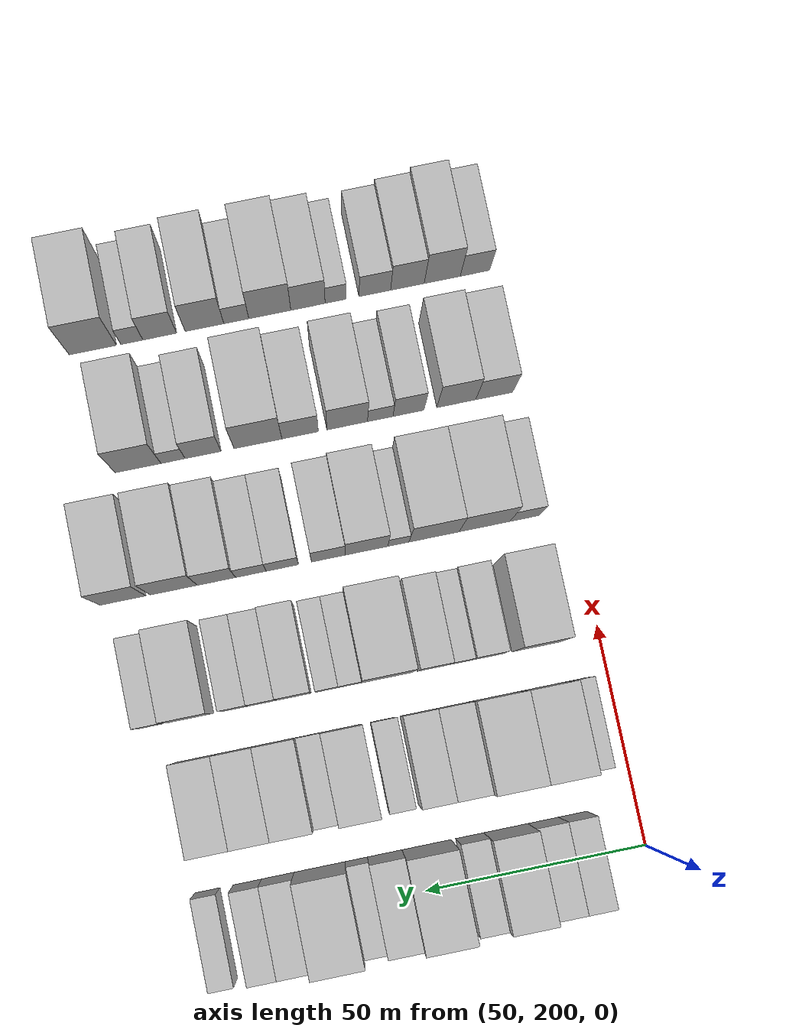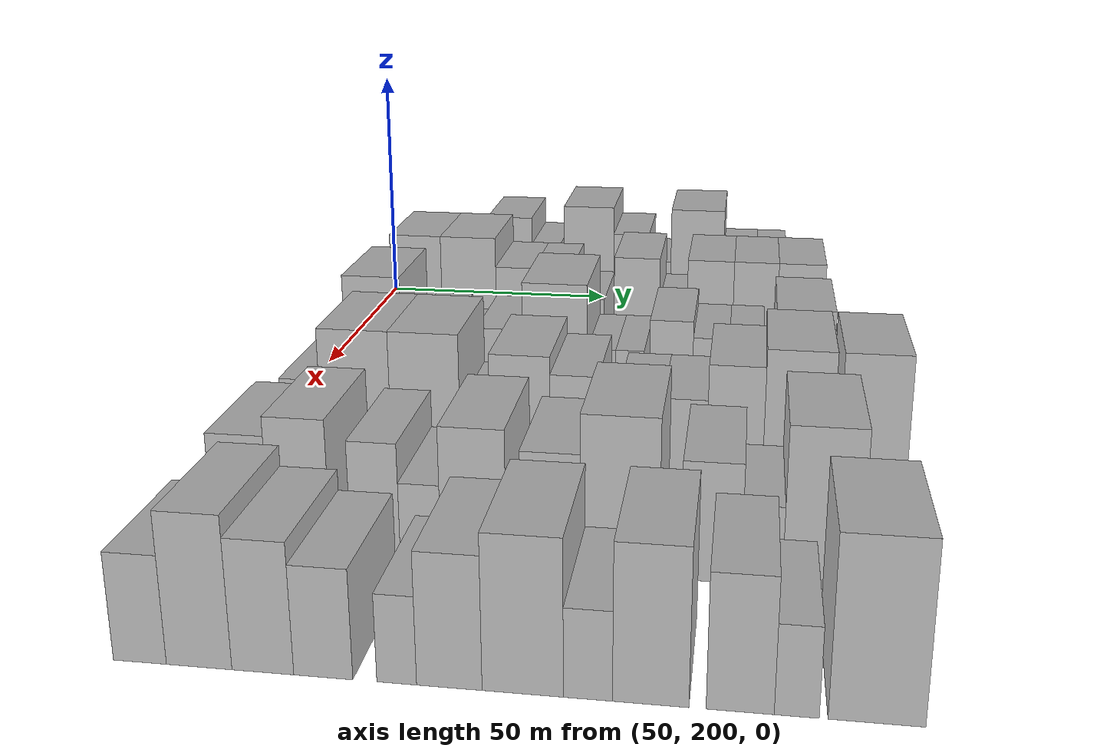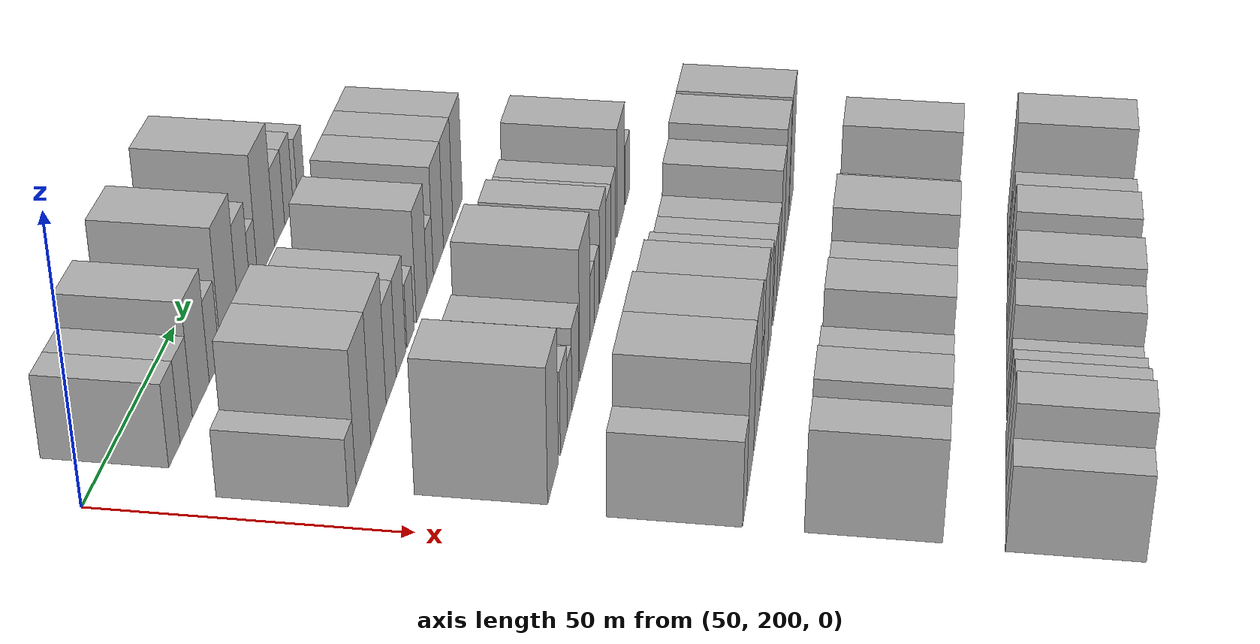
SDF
<sdf version="1.6">
 <world name="default">
  <model name="building_76">
   <static>1</static>
   <pose>50.0000 214.5191 0 0.000000 0.000000 0.000000</pose>
   <link name="link">
    <pose>0 0 7.50 0 0 0</pose>
    <collision name="collision"><geometry><box><size>20.0000 6.4022 15.0000</size></box></geometry></collision>
    <visual name="visual">
     <cast_shadows>0</cast_shadows>
     <geometry><box><size>20.0000 6.4022 15.0000</size></box></geometry>
     <material>
      <script>
       <uri>model://HANNAS_wall/materials/scripts</uri>
       <uri>model://HANNAS_wall/materials/textures</uri>
       <name>vrc/HANNAS_wall</name>
      </script>
     </material>
    </visual>
   </link>
  </model>
  <model name="building_77">
   <static>1</static>
   <pose>50.0000 221.2365 0 0.000000 0.000000 0.000000</pose>
   <link name="link">
    <pose>0 0 7.50 0 0 0</pose>
    <collision name="collision"><geometry><box><size>20.0000 7.0326 15.0000</size></box></geometry></collision>
    <visual name="visual">
     <cast_shadows>0</cast_shadows>
     <geometry><box><size>20.0000 7.0326 15.0000</size></box></geometry>
     <material>
      <script>
       <uri>model://HANNAS_wall/materials/scripts</uri>
       <uri>model://HANNAS_wall/materials/textures</uri>
       <name>vrc/HANNAS_wall</name>
      </script>
     </material>
    </visual>
   </link>
  </model>
  <model name="building_78">
   <static>1</static>
   <pose>50.0000 229.7647 0 0.000000 0.000000 0.000000</pose>
   <link name="link">
    <pose>0 0 10.50 0 0 0</pose>
    <collision name="collision"><geometry><box><size>20.0000 10.0237 21.0000</size></box></geometry></collision>
    <visual name="visual">
     <cast_shadows>0</cast_shadows>
     <geometry><box><size>20.0000 10.0237 21.0000</size></box></geometry>
     <material>
      <script>
       <uri>model://HANNAS_wall/materials/scripts</uri>
       <uri>model://HANNAS_wall/materials/textures</uri>
       <name>vrc/HANNAS_wall</name>
      </script>
     </material>
    </visual>
   </link>
  </model>
  <model name="building_79">
   <static>1</static>
   <pose>50.0000 237.9701 0 0.000000 0.000000 0.000000</pose>
   <link name="link">
    <pose>0 0 7.50 0 0 0</pose>
    <collision name="collision"><geometry><box><size>20.0000 6.3873 15.0000</size></box></geometry></collision>
    <visual name="visual">
     <cast_shadows>0</cast_shadows>
     <geometry><box><size>20.0000 6.3873 15.0000</size></box></geometry>
     <material>
      <script>
       <uri>model://HANNAS_wall/materials/scripts</uri>
       <uri>model://HANNAS_wall/materials/textures</uri>
       <name>vrc/HANNAS_wall</name>
      </script>
     </material>
    </visual>
   </link>
  </model>
  <model name="building_80">
   <static>1</static>
   <pose>50.0000 247.7538 0 0.000000 0.000000 0.000000</pose>
   <link name="link">
    <pose>0 0 12.00 0 0 0</pose>
    <collision name="collision"><geometry><box><size>20.0000 11.1800 24.0000</size></box></geometry></collision>
    <visual name="visual">
     <cast_shadows>0</cast_shadows>
     <geometry><box><size>20.0000 11.1800 24.0000</size></box></geometry>
     <material>
      <script>
       <uri>model://HANNAS_wall/materials/scripts</uri>
       <uri>model://HANNAS_wall/materials/textures</uri>
       <name>vrc/HANNAS_wall</name>
      </script>
     </material>
    </visual>
   </link>
  </model>
  <model name="building_81">
   <static>1</static>
   <pose>50.0000 257.2533 0 0.000000 0.000000 0.000000</pose>
   <link name="link">
    <pose>0 0 9.00 0 0 0</pose>
    <collision name="collision"><geometry><box><size>20.0000 7.8191 18.0000</size></box></geometry></collision>
    <visual name="visual">
     <cast_shadows>0</cast_shadows>
     <geometry><box><size>20.0000 7.8191 18.0000</size></box></geometry>
     <material>
      <script>
       <uri>model://HANNAS_wall/materials/scripts</uri>
       <uri>model://HANNAS_wall/materials/textures</uri>
       <name>vrc/HANNAS_wall</name>
      </script>
     </material>
    </visual>
   </link>
  </model>
  <model name="building_82">
   <static>1</static>
   <pose>50.0000 263.6505 0 0.000000 0.000000 0.000000</pose>
   <link name="link">
    <pose>0 0 6.00 0 0 0</pose>
    <collision name="collision"><geometry><box><size>20.0000 4.9752 12.0000</size></box></geometry></collision>
    <visual name="visual">
     <cast_shadows>0</cast_shadows>
     <geometry><box><size>20.0000 4.9752 12.0000</size></box></geometry>
     <material>
      <script>
       <uri>model://HANNAS_wall/materials/scripts</uri>
       <uri>model://HANNAS_wall/materials/textures</uri>
       <name>vrc/HANNAS_wall</name>
      </script>
     </material>
    </visual>
   </link>
  </model>
  <model name="building_83">
   <static>1</static>
   <pose>50.0000 271.9562 0 0.000000 0.000000 0.000000</pose>
   <link name="link">
    <pose>0 0 12.00 0 0 0</pose>
    <collision name="collision"><geometry><box><size>20.0000 11.6362 24.0000</size></box></geometry></collision>
    <visual name="visual">
     <cast_shadows>0</cast_shadows>
     <geometry><box><size>20.0000 11.6362 24.0000</size></box></geometry>
     <material>
      <script>
       <uri>model://HANNAS_wall/materials/scripts</uri>
       <uri>model://HANNAS_wall/materials/textures</uri>
       <name>vrc/HANNAS_wall</name>
      </script>
     </material>
    </visual>
   </link>
  </model>
  <model name="building_84">
   <static>1</static>
   <pose>50.0000 281.4406 0 0.000000 0.000000 0.000000</pose>
   <link name="link">
    <pose>0 0 7.50 0 0 0</pose>
    <collision name="collision"><geometry><box><size>20.0000 7.3326 15.0000</size></box></geometry></collision>
    <visual name="visual">
     <cast_shadows>0</cast_shadows>
     <geometry><box><size>20.0000 7.3326 15.0000</size></box></geometry>
     <material>
      <script>
       <uri>model://HANNAS_wall/materials/scripts</uri>
       <uri>model://HANNAS_wall/materials/textures</uri>
       <name>vrc/HANNAS_wall</name>
      </script>
     </material>
    </visual>
   </link>
  </model>
  <model name="building_85">
   <static>1</static>
   <pose>50.0000 288.3060 0 0.000000 0.000000 0.000000</pose>
   <link name="link">
    <pose>0 0 7.50 0 0 0</pose>
    <collision name="collision"><geometry><box><size>20.0000 6.3982 15.0000</size></box></geometry></collision>
    <visual name="visual">
     <cast_shadows>0</cast_shadows>
     <geometry><box><size>20.0000 6.3982 15.0000</size></box></geometry>
     <material>
      <script>
       <uri>model://HANNAS_wall/materials/scripts</uri>
       <uri>model://HANNAS_wall/materials/textures</uri>
       <name>vrc/HANNAS_wall</name>
      </script>
     </material>
    </visual>
   </link>
  </model>
  <model name="building_86">
   <static>1</static>
   <pose>50.0000 297.3018 0 0.000000 0.000000 0.000000</pose>
   <link name="link">
    <pose>0 0 6.00 0 0 0</pose>
    <collision name="collision"><geometry><box><size>20.0000 5.5934 12.0000</size></box></geometry></collision>
    <visual name="visual">
     <cast_shadows>0</cast_shadows>
     <geometry><box><size>20.0000 5.5934 12.0000</size></box></geometry>
     <material>
      <script>
       <uri>model://HANNAS_wall/materials/scripts</uri>
       <uri>model://HANNAS_wall/materials/textures</uri>
       <name>vrc/HANNAS_wall</name>
      </script>
     </material>
    </visual>
   </link>
  </model>
  <model name="building_187">
   <static>1</static>
   <pose>79.0000 207.6143 0 0.000000 0.000000 0.000000</pose>
   <link name="link">
    <pose>0 0 6.00 0 0 0</pose>
    <collision name="collision"><geometry><box><size>20.0000 5.2661 12.0000</size></box></geometry></collision>
    <visual name="visual">
     <cast_shadows>0</cast_shadows>
     <geometry><box><size>20.0000 5.2661 12.0000</size></box></geometry>
     <material>
      <script>
       <uri>model://HANNAS_wall/materials/scripts</uri>
       <uri>model://HANNAS_wall/materials/textures</uri>
       <name>vrc/HANNAS_wall</name>
      </script>
     </material>
    </visual>
   </link>
  </model>
  <model name="building_188">
   <static>1</static>
   <pose>79.0000 215.5595 0 0.000000 0.000000 0.000000</pose>
   <link name="link">
    <pose>0 0 12.00 0 0 0</pose>
    <collision name="collision"><geometry><box><size>20.0000 10.6242 24.0000</size></box></geometry></collision>
    <visual name="visual">
     <cast_shadows>0</cast_shadows>
     <geometry><box><size>20.0000 10.6242 24.0000</size></box></geometry>
     <material>
      <script>
       <uri>model://HANNAS_wall/materials/scripts</uri>
       <uri>model://HANNAS_wall/materials/textures</uri>
       <name>vrc/HANNAS_wall</name>
      </script>
     </material>
    </visual>
   </link>
  </model>
  <model name="building_189">
   <static>1</static>
   <pose>79.0000 226.5556 0 0.000000 0.000000 0.000000</pose>
   <link name="link">
    <pose>0 0 12.00 0 0 0</pose>
    <collision name="collision"><geometry><box><size>20.0000 11.3680 24.0000</size></box></geometry></collision>
    <visual name="visual">
     <cast_shadows>0</cast_shadows>
     <geometry><box><size>20.0000 11.3680 24.0000</size></box></geometry>
     <material>
      <script>
       <uri>model://HANNAS_wall/materials/scripts</uri>
       <uri>model://HANNAS_wall/materials/textures</uri>
       <name>vrc/HANNAS_wall</name>
      </script>
     </material>
    </visual>
   </link>
  </model>
  <model name="building_190">
   <static>1</static>
   <pose>79.0000 236.1468 0 0.000000 0.000000 0.000000</pose>
   <link name="link">
    <pose>0 0 9.00 0 0 0</pose>
    <collision name="collision"><geometry><box><size>20.0000 7.8143 18.0000</size></box></geometry></collision>
    <visual name="visual">
     <cast_shadows>0</cast_shadows>
     <geometry><box><size>20.0000 7.8143 18.0000</size></box></geometry>
     <material>
      <script>
       <uri>model://HANNAS_wall/materials/scripts</uri>
       <uri>model://HANNAS_wall/materials/textures</uri>
       <name>vrc/HANNAS_wall</name>
      </script>
     </material>
    </visual>
   </link>
  </model>
  <model name="building_191">
   <static>1</static>
   <pose>79.0000 243.8932 0 0.000000 0.000000 0.000000</pose>
   <link name="link">
    <pose>0 0 9.00 0 0 0</pose>
    <collision name="collision"><geometry><box><size>20.0000 7.6785 18.0000</size></box></geometry></collision>
    <visual name="visual">
     <cast_shadows>0</cast_shadows>
     <geometry><box><size>20.0000 7.6785 18.0000</size></box></geometry>
     <material>
      <script>
       <uri>model://HANNAS_wall/materials/scripts</uri>
       <uri>model://HANNAS_wall/materials/textures</uri>
       <name>vrc/HANNAS_wall</name>
      </script>
     </material>
    </visual>
   </link>
  </model>
  <model name="building_192">
   <static>1</static>
   <pose>79.0000 251.6513 0 0.000000 0.000000 0.000000</pose>
   <link name="link">
    <pose>0 0 6.00 0 0 0</pose>
    <collision name="collision"><geometry><box><size>20.0000 5.8377 12.0000</size></box></geometry></collision>
    <visual name="visual">
     <cast_shadows>0</cast_shadows>
     <geometry><box><size>20.0000 5.8377 12.0000</size></box></geometry>
     <material>
      <script>
       <uri>model://HANNAS_wall/materials/scripts</uri>
       <uri>model://HANNAS_wall/materials/textures</uri>
       <name>vrc/HANNAS_wall</name>
      </script>
     </material>
    </visual>
   </link>
  </model>
  <model name="building_193">
   <static>1</static>
   <pose>79.0000 261.1544 0 0.000000 0.000000 0.000000</pose>
   <link name="link">
    <pose>0 0 10.50 0 0 0</pose>
    <collision name="collision"><geometry><box><size>20.0000 9.1684 21.0000</size></box></geometry></collision>
    <visual name="visual">
     <cast_shadows>0</cast_shadows>
     <geometry><box><size>20.0000 9.1684 21.0000</size></box></geometry>
     <material>
      <script>
       <uri>model://HANNAS_wall/materials/scripts</uri>
       <uri>model://HANNAS_wall/materials/textures</uri>
       <name>vrc/HANNAS_wall</name>
      </script>
     </material>
    </visual>
   </link>
  </model>
  <model name="building_194">
   <static>1</static>
   <pose>79.0000 268.5288 0 0.000000 0.000000 0.000000</pose>
   <link name="link">
    <pose>0 0 6.00 0 0 0</pose>
    <collision name="collision"><geometry><box><size>20.0000 5.5805 12.0000</size></box></geometry></collision>
    <visual name="visual">
     <cast_shadows>0</cast_shadows>
     <geometry><box><size>20.0000 5.5805 12.0000</size></box></geometry>
     <material>
      <script>
       <uri>model://HANNAS_wall/materials/scripts</uri>
       <uri>model://HANNAS_wall/materials/textures</uri>
       <name>vrc/HANNAS_wall</name>
      </script>
     </material>
    </visual>
   </link>
  </model>
  <model name="building_195">
   <static>1</static>
   <pose>79.0000 275.9075 0 0.000000 0.000000 0.000000</pose>
   <link name="link">
    <pose>0 0 10.50 0 0 0</pose>
    <collision name="collision"><geometry><box><size>20.0000 9.1767 21.0000</size></box></geometry></collision>
    <visual name="visual">
     <cast_shadows>0</cast_shadows>
     <geometry><box><size>20.0000 9.1767 21.0000</size></box></geometry>
     <material>
      <script>
       <uri>model://HANNAS_wall/materials/scripts</uri>
       <uri>model://HANNAS_wall/materials/textures</uri>
       <name>vrc/HANNAS_wall</name>
      </script>
     </material>
    </visual>
   </link>
  </model>
  <model name="building_196">
   <static>1</static>
   <pose>79.0000 284.8861 0 0.000000 0.000000 0.000000</pose>
   <link name="link">
    <pose>0 0 10.50 0 0 0</pose>
    <collision name="collision"><geometry><box><size>20.0000 8.7805 21.0000</size></box></geometry></collision>
    <visual name="visual">
     <cast_shadows>0</cast_shadows>
     <geometry><box><size>20.0000 8.7805 21.0000</size></box></geometry>
     <material>
      <script>
       <uri>model://HANNAS_wall/materials/scripts</uri>
       <uri>model://HANNAS_wall/materials/textures</uri>
       <name>vrc/HANNAS_wall</name>
      </script>
     </material>
    </visual>
   </link>
  </model>
  <model name="building_197">
   <static>1</static>
   <pose>79.0000 293.8792 0 0.000000 0.000000 0.000000</pose>
   <link name="link">
    <pose>0 0 10.50 0 0 0</pose>
    <collision name="collision"><geometry><box><size>20.0000 9.2056 21.0000</size></box></geometry></collision>
    <visual name="visual">
     <cast_shadows>0</cast_shadows>
     <geometry><box><size>20.0000 9.2056 21.0000</size></box></geometry>
     <material>
      <script>
       <uri>model://HANNAS_wall/materials/scripts</uri>
       <uri>model://HANNAS_wall/materials/textures</uri>
       <name>vrc/HANNAS_wall</name>
      </script>
     </material>
    </visual>
   </link>
  </model>
  <model name="building_296">
   <static>1</static>
   <pose>108.0000 214.7447 0 0.000000 0.000000 0.000000</pose>
   <link name="link">
    <pose>0 0 12.00 0 0 0</pose>
    <collision name="collision"><geometry><box><size>20.0000 10.8006 24.0000</size></box></geometry></collision>
    <visual name="visual">
     <cast_shadows>0</cast_shadows>
     <geometry><box><size>20.0000 10.8006 24.0000</size></box></geometry>
     <material>
      <script>
       <uri>model://HANNAS_wall/materials/scripts</uri>
       <uri>model://HANNAS_wall/materials/textures</uri>
       <name>vrc/HANNAS_wall</name>
      </script>
     </material>
    </visual>
   </link>
  </model>
  <model name="building_297">
   <static>1</static>
   <pose>108.0000 225.7770 0 0.000000 0.000000 0.000000</pose>
   <link name="link">
    <pose>0 0 7.50 0 0 0</pose>
    <collision name="collision"><geometry><box><size>20.0000 7.2639 15.0000</size></box></geometry></collision>
    <visual name="visual">
     <cast_shadows>0</cast_shadows>
     <geometry><box><size>20.0000 7.2639 15.0000</size></box></geometry>
     <material>
      <script>
       <uri>model://HANNAS_wall/materials/scripts</uri>
       <uri>model://HANNAS_wall/materials/textures</uri>
       <name>vrc/HANNAS_wall</name>
      </script>
     </material>
    </visual>
   </link>
  </model>
  <model name="building_298">
   <static>1</static>
   <pose>108.0000 231.8840 0 0.000000 0.000000 0.000000</pose>
   <link name="link">
    <pose>0 0 6.00 0 0 0</pose>
    <collision name="collision"><geometry><box><size>20.0000 4.9500 12.0000</size></box></geometry></collision>
    <visual name="visual">
     <cast_shadows>0</cast_shadows>
     <geometry><box><size>20.0000 4.9500 12.0000</size></box></geometry>
     <material>
      <script>
       <uri>model://HANNAS_wall/materials/scripts</uri>
       <uri>model://HANNAS_wall/materials/textures</uri>
       <name>vrc/HANNAS_wall</name>
      </script>
     </material>
    </visual>
   </link>
  </model>
  <model name="building_299">
   <static>1</static>
   <pose>108.0000 238.1082 0 0.000000 0.000000 0.000000</pose>
   <link name="link">
    <pose>0 0 7.50 0 0 0</pose>
    <collision name="collision"><geometry><box><size>20.0000 7.4985 15.0000</size></box></geometry></collision>
    <visual name="visual">
     <cast_shadows>0</cast_shadows>
     <geometry><box><size>20.0000 7.4985 15.0000</size></box></geometry>
     <material>
      <script>
       <uri>model://HANNAS_wall/materials/scripts</uri>
       <uri>model://HANNAS_wall/materials/textures</uri>
       <name>vrc/HANNAS_wall</name>
      </script>
     </material>
    </visual>
   </link>
  </model>
  <model name="building_300">
   <static>1</static>
   <pose>108.0000 248.8177 0 0.000000 0.000000 0.000000</pose>
   <link name="link">
    <pose>0 0 12.00 0 0 0</pose>
    <collision name="collision"><geometry><box><size>20.0000 11.9206 24.0000</size></box></geometry></collision>
    <visual name="visual">
     <cast_shadows>0</cast_shadows>
     <geometry><box><size>20.0000 11.9206 24.0000</size></box></geometry>
     <material>
      <script>
       <uri>model://HANNAS_wall/materials/scripts</uri>
       <uri>model://HANNAS_wall/materials/textures</uri>
       <name>vrc/HANNAS_wall</name>
      </script>
     </material>
    </visual>
   </link>
  </model>
  <model name="building_301">
   <static>1</static>
   <pose>108.0000 257.3866 0 0.000000 0.000000 0.000000</pose>
   <link name="link">
    <pose>0 0 6.00 0 0 0</pose>
    <collision name="collision"><geometry><box><size>20.0000 5.2171 12.0000</size></box></geometry></collision>
    <visual name="visual">
     <cast_shadows>0</cast_shadows>
     <geometry><box><size>20.0000 5.2171 12.0000</size></box></geometry>
     <material>
      <script>
       <uri>model://HANNAS_wall/materials/scripts</uri>
       <uri>model://HANNAS_wall/materials/textures</uri>
       <name>vrc/HANNAS_wall</name>
      </script>
     </material>
    </visual>
   </link>
  </model>
  <model name="building_302">
   <static>1</static>
   <pose>108.0000 262.5639 0 0.000000 0.000000 0.000000</pose>
   <link name="link">
    <pose>0 0 6.00 0 0 0</pose>
    <collision name="collision"><geometry><box><size>20.0000 5.1374 12.0000</size></box></geometry></collision>
    <visual name="visual">
     <cast_shadows>0</cast_shadows>
     <geometry><box><size>20.0000 5.1374 12.0000</size></box></geometry>
     <material>
      <script>
       <uri>model://HANNAS_wall/materials/scripts</uri>
       <uri>model://HANNAS_wall/materials/textures</uri>
       <name>vrc/HANNAS_wall</name>
      </script>
     </material>
    </visual>
   </link>
  </model>
  <model name="building_303">
   <static>1</static>
   <pose>108.0000 270.0235 0 0.000000 0.000000 0.000000</pose>
   <link name="link">
    <pose>0 0 9.00 0 0 0</pose>
    <collision name="collision"><geometry><box><size>20.0000 7.7819 18.0000</size></box></geometry></collision>
    <visual name="visual">
     <cast_shadows>0</cast_shadows>
     <geometry><box><size>20.0000 7.7819 18.0000</size></box></geometry>
     <material>
      <script>
       <uri>model://HANNAS_wall/materials/scripts</uri>
       <uri>model://HANNAS_wall/materials/textures</uri>
       <name>vrc/HANNAS_wall</name>
      </script>
     </material>
    </visual>
   </link>
  </model>
  <model name="building_304">
   <static>1</static>
   <pose>108.0000 277.1102 0 0.000000 0.000000 0.000000</pose>
   <link name="link">
    <pose>0 0 7.50 0 0 0</pose>
    <collision name="collision"><geometry><box><size>20.0000 6.3914 15.0000</size></box></geometry></collision>
    <visual name="visual">
     <cast_shadows>0</cast_shadows>
     <geometry><box><size>20.0000 6.3914 15.0000</size></box></geometry>
     <material>
      <script>
       <uri>model://HANNAS_wall/materials/scripts</uri>
       <uri>model://HANNAS_wall/materials/textures</uri>
       <name>vrc/HANNAS_wall</name>
      </script>
     </material>
    </visual>
   </link>
  </model>
  <model name="building_305">
   <static>1</static>
   <pose>108.0000 283.3762 0 0.000000 0.000000 0.000000</pose>
   <link name="link">
    <pose>0 0 7.50 0 0 0</pose>
    <collision name="collision"><geometry><box><size>20.0000 6.1407 15.0000</size></box></geometry></collision>
    <visual name="visual">
     <cast_shadows>0</cast_shadows>
     <geometry><box><size>20.0000 6.1407 15.0000</size></box></geometry>
     <material>
      <script>
       <uri>model://HANNAS_wall/materials/scripts</uri>
       <uri>model://HANNAS_wall/materials/textures</uri>
       <name>vrc/HANNAS_wall</name>
      </script>
     </material>
    </visual>
   </link>
  </model>
  <model name="building_306">
   <static>1</static>
   <pose>108.0000 293.6307 0 0.000000 0.000000 0.000000</pose>
   <link name="link">
    <pose>0 0 10.50 0 0 0</pose>
    <collision name="collision"><geometry><box><size>20.0000 10.3681 21.0000</size></box></geometry></collision>
    <visual name="visual">
     <cast_shadows>0</cast_shadows>
     <geometry><box><size>20.0000 10.3681 21.0000</size></box></geometry>
     <material>
      <script>
       <uri>model://HANNAS_wall/materials/scripts</uri>
       <uri>model://HANNAS_wall/materials/textures</uri>
       <name>vrc/HANNAS_wall</name>
      </script>
     </material>
    </visual>
   </link>
  </model>
  <model name="building_307">
   <static>1</static>
   <pose>108.0000 302.7486 0 0.000000 0.000000 0.000000</pose>
   <link name="link">
    <pose>0 0 6.00 0 0 0</pose>
    <collision name="collision"><geometry><box><size>20.0000 5.8677 12.0000</size></box></geometry></collision>
    <visual name="visual">
     <cast_shadows>0</cast_shadows>
     <geometry><box><size>20.0000 5.8677 12.0000</size></box></geometry>
     <material>
      <script>
       <uri>model://HANNAS_wall/materials/scripts</uri>
       <uri>model://HANNAS_wall/materials/textures</uri>
       <name>vrc/HANNAS_wall</name>
      </script>
     </material>
    </visual>
   </link>
  </model>
  <model name="building_414">
   <static>1</static>
   <pose>137.0000 210.8764 0 0.000000 0.000000 0.000000</pose>
   <link name="link">
    <pose>0 0 7.50 0 0 0</pose>
    <collision name="collision"><geometry><box><size>20.0000 6.8087 15.0000</size></box></geometry></collision>
    <visual name="visual">
     <cast_shadows>0</cast_shadows>
     <geometry><box><size>20.0000 6.8087 15.0000</size></box></geometry>
     <material>
      <script>
       <uri>model://HANNAS_wall/materials/scripts</uri>
       <uri>model://HANNAS_wall/materials/textures</uri>
       <name>vrc/HANNAS_wall</name>
      </script>
     </material>
    </visual>
   </link>
  </model>
  <model name="building_415">
   <static>1</static>
   <pose>137.0000 220.1883 0 0.000000 0.000000 0.000000</pose>
   <link name="link">
    <pose>0 0 12.00 0 0 0</pose>
    <collision name="collision"><geometry><box><size>20.0000 11.8151 24.0000</size></box></geometry></collision>
    <visual name="visual">
     <cast_shadows>0</cast_shadows>
     <geometry><box><size>20.0000 11.8151 24.0000</size></box></geometry>
     <material>
      <script>
       <uri>model://HANNAS_wall/materials/scripts</uri>
       <uri>model://HANNAS_wall/materials/textures</uri>
       <name>vrc/HANNAS_wall</name>
      </script>
     </material>
    </visual>
   </link>
  </model>
  <model name="building_416">
   <static>1</static>
   <pose>137.0000 231.8935 0 0.000000 0.000000 0.000000</pose>
   <link name="link">
    <pose>0 0 12.00 0 0 0</pose>
    <collision name="collision"><geometry><box><size>20.0000 11.5952 24.0000</size></box></geometry></collision>
    <visual name="visual">
     <cast_shadows>0</cast_shadows>
     <geometry><box><size>20.0000 11.5952 24.0000</size></box></geometry>
     <material>
      <script>
       <uri>model://HANNAS_wall/materials/scripts</uri>
       <uri>model://HANNAS_wall/materials/textures</uri>
       <name>vrc/HANNAS_wall</name>
      </script>
     </material>
    </visual>
   </link>
  </model>
  <model name="building_417">
   <static>1</static>
   <pose>137.0000 240.1460 0 0.000000 0.000000 0.000000</pose>
   <link name="link">
    <pose>0 0 6.00 0 0 0</pose>
    <collision name="collision"><geometry><box><size>20.0000 4.9098 12.0000</size></box></geometry></collision>
    <visual name="visual">
     <cast_shadows>0</cast_shadows>
     <geometry><box><size>20.0000 4.9098 12.0000</size></box></geometry>
     <material>
      <script>
       <uri>model://HANNAS_wall/materials/scripts</uri>
       <uri>model://HANNAS_wall/materials/textures</uri>
       <name>vrc/HANNAS_wall</name>
      </script>
     </material>
    </visual>
   </link>
  </model>
  <model name="building_418">
   <static>1</static>
   <pose>137.0000 247.5347 0 0.000000 0.000000 0.000000</pose>
   <link name="link">
    <pose>0 0 10.50 0 0 0</pose>
    <collision name="collision"><geometry><box><size>20.0000 9.8676 21.0000</size></box></geometry></collision>
    <visual name="visual">
     <cast_shadows>0</cast_shadows>
     <geometry><box><size>20.0000 9.8676 21.0000</size></box></geometry>
     <material>
      <script>
       <uri>model://HANNAS_wall/materials/scripts</uri>
       <uri>model://HANNAS_wall/materials/textures</uri>
       <name>vrc/HANNAS_wall</name>
      </script>
     </material>
    </visual>
   </link>
  </model>
  <model name="building_419">
   <static>1</static>
   <pose>137.0000 256.3323 0 0.000000 0.000000 0.000000</pose>
   <link name="link">
    <pose>0 0 9.00 0 0 0</pose>
    <collision name="collision"><geometry><box><size>20.0000 7.7275 18.0000</size></box></geometry></collision>
    <visual name="visual">
     <cast_shadows>0</cast_shadows>
     <geometry><box><size>20.0000 7.7275 18.0000</size></box></geometry>
     <material>
      <script>
       <uri>model://HANNAS_wall/materials/scripts</uri>
       <uri>model://HANNAS_wall/materials/textures</uri>
       <name>vrc/HANNAS_wall</name>
      </script>
     </material>
    </visual>
   </link>
  </model>
  <model name="building_420">
   <static>1</static>
   <pose>137.0000 266.8930 0 0.000000 0.000000 0.000000</pose>
   <link name="link">
    <pose>0 0 7.50 0 0 0</pose>
    <collision name="collision"><geometry><box><size>20.0000 7.3940 15.0000</size></box></geometry></collision>
    <visual name="visual">
     <cast_shadows>0</cast_shadows>
     <geometry><box><size>20.0000 7.3940 15.0000</size></box></geometry>
     <material>
      <script>
       <uri>model://HANNAS_wall/materials/scripts</uri>
       <uri>model://HANNAS_wall/materials/textures</uri>
       <name>vrc/HANNAS_wall</name>
      </script>
     </material>
    </visual>
   </link>
  </model>
  <model name="building_421">
   <static>1</static>
   <pose>137.0000 274.1233 0 0.000000 0.000000 0.000000</pose>
   <link name="link">
    <pose>0 0 7.50 0 0 0</pose>
    <collision name="collision"><geometry><box><size>20.0000 7.0666 15.0000</size></box></geometry></collision>
    <visual name="visual">
     <cast_shadows>0</cast_shadows>
     <geometry><box><size>20.0000 7.0666 15.0000</size></box></geometry>
     <material>
      <script>
       <uri>model://HANNAS_wall/materials/scripts</uri>
       <uri>model://HANNAS_wall/materials/textures</uri>
       <name>vrc/HANNAS_wall</name>
      </script>
     </material>
    </visual>
   </link>
  </model>
  <model name="building_422">
   <static>1</static>
   <pose>137.0000 282.0815 0 0.000000 0.000000 0.000000</pose>
   <link name="link">
    <pose>0 0 10.50 0 0 0</pose>
    <collision name="collision"><geometry><box><size>20.0000 8.8498 21.0000</size></box></geometry></collision>
    <visual name="visual">
     <cast_shadows>0</cast_shadows>
     <geometry><box><size>20.0000 8.8498 21.0000</size></box></geometry>
     <material>
      <script>
       <uri>model://HANNAS_wall/materials/scripts</uri>
       <uri>model://HANNAS_wall/materials/textures</uri>
       <name>vrc/HANNAS_wall</name>
      </script>
     </material>
    </visual>
   </link>
  </model>
  <model name="building_423">
   <static>1</static>
   <pose>137.0000 291.9061 0 0.000000 0.000000 0.000000</pose>
   <link name="link">
    <pose>0 0 12.00 0 0 0</pose>
    <collision name="collision"><geometry><box><size>20.0000 10.7993 24.0000</size></box></geometry></collision>
    <visual name="visual">
     <cast_shadows>0</cast_shadows>
     <geometry><box><size>20.0000 10.7993 24.0000</size></box></geometry>
     <material>
      <script>
       <uri>model://HANNAS_wall/materials/scripts</uri>
       <uri>model://HANNAS_wall/materials/textures</uri>
       <name>vrc/HANNAS_wall</name>
      </script>
     </material>
    </visual>
   </link>
  </model>
  <model name="building_424">
   <static>1</static>
   <pose>137.0000 303.5620 0 0.000000 0.000000 0.000000</pose>
   <link name="link">
    <pose>0 0 12.00 0 0 0</pose>
    <collision name="collision"><geometry><box><size>20.0000 10.5126 24.0000</size></box></geometry></collision>
    <visual name="visual">
     <cast_shadows>0</cast_shadows>
     <geometry><box><size>20.0000 10.5126 24.0000</size></box></geometry>
     <material>
      <script>
       <uri>model://HANNAS_wall/materials/scripts</uri>
       <uri>model://HANNAS_wall/materials/textures</uri>
       <name>vrc/HANNAS_wall</name>
      </script>
     </material>
    </visual>
   </link>
  </model>
  <model name="building_529">
   <static>1</static>
   <pose>166.0000 211.6954 0 0.000000 0.000000 0.000000</pose>
   <link name="link">
    <pose>0 0 9.00 0 0 0</pose>
    <collision name="collision"><geometry><box><size>20.0000 8.6298 18.0000</size></box></geometry></collision>
    <visual name="visual">
     <cast_shadows>0</cast_shadows>
     <geometry><box><size>20.0000 8.6298 18.0000</size></box></geometry>
     <material>
      <script>
       <uri>model://HANNAS_wall/materials/scripts</uri>
       <uri>model://HANNAS_wall/materials/textures</uri>
       <name>vrc/HANNAS_wall</name>
      </script>
     </material>
    </visual>
   </link>
  </model>
  <model name="building_530">
   <static>1</static>
   <pose>166.0000 220.5561 0 0.000000 0.000000 0.000000</pose>
   <link name="link">
    <pose>0 0 10.50 0 0 0</pose>
    <collision name="collision"><geometry><box><size>20.0000 9.0916 21.0000</size></box></geometry></collision>
    <visual name="visual">
     <cast_shadows>0</cast_shadows>
     <geometry><box><size>20.0000 9.0916 21.0000</size></box></geometry>
     <material>
      <script>
       <uri>model://HANNAS_wall/materials/scripts</uri>
       <uri>model://HANNAS_wall/materials/textures</uri>
       <name>vrc/HANNAS_wall</name>
      </script>
     </material>
    </visual>
   </link>
  </model>
  <model name="building_531">
   <static>1</static>
   <pose>166.0000 231.7239 0 0.000000 0.000000 0.000000</pose>
   <link name="link">
    <pose>0 0 9.00 0 0 0</pose>
    <collision name="collision"><geometry><box><size>20.0000 7.2439 18.0000</size></box></geometry></collision>
    <visual name="visual">
     <cast_shadows>0</cast_shadows>
     <geometry><box><size>20.0000 7.2439 18.0000</size></box></geometry>
     <material>
      <script>
       <uri>model://HANNAS_wall/materials/scripts</uri>
       <uri>model://HANNAS_wall/materials/textures</uri>
       <name>vrc/HANNAS_wall</name>
      </script>
     </material>
    </visual>
   </link>
  </model>
  <model name="building_532">
   <static>1</static>
   <pose>166.0000 238.3146 0 0.000000 0.000000 0.000000</pose>
   <link name="link">
    <pose>0 0 6.00 0 0 0</pose>
    <collision name="collision"><geometry><box><size>20.0000 5.9373 12.0000</size></box></geometry></collision>
    <visual name="visual">
     <cast_shadows>0</cast_shadows>
     <geometry><box><size>20.0000 5.9373 12.0000</size></box></geometry>
     <material>
      <script>
       <uri>model://HANNAS_wall/materials/scripts</uri>
       <uri>model://HANNAS_wall/materials/textures</uri>
       <name>vrc/HANNAS_wall</name>
      </script>
     </material>
    </visual>
   </link>
  </model>
  <model name="building_533">
   <static>1</static>
   <pose>166.0000 246.0061 0 0.000000 0.000000 0.000000</pose>
   <link name="link">
    <pose>0 0 10.50 0 0 0</pose>
    <collision name="collision"><geometry><box><size>20.0000 9.4457 21.0000</size></box></geometry></collision>
    <visual name="visual">
     <cast_shadows>0</cast_shadows>
     <geometry><box><size>20.0000 9.4457 21.0000</size></box></geometry>
     <material>
      <script>
       <uri>model://HANNAS_wall/materials/scripts</uri>
       <uri>model://HANNAS_wall/materials/textures</uri>
       <name>vrc/HANNAS_wall</name>
      </script>
     </material>
    </visual>
   </link>
  </model>
  <model name="building_534">
   <static>1</static>
   <pose>166.0000 256.9655 0 0.000000 0.000000 0.000000</pose>
   <link name="link">
    <pose>0 0 9.00 0 0 0</pose>
    <collision name="collision"><geometry><box><size>20.0000 8.4731 18.0000</size></box></geometry></collision>
    <visual name="visual">
     <cast_shadows>0</cast_shadows>
     <geometry><box><size>20.0000 8.4731 18.0000</size></box></geometry>
     <material>
      <script>
       <uri>model://HANNAS_wall/materials/scripts</uri>
       <uri>model://HANNAS_wall/materials/textures</uri>
       <name>vrc/HANNAS_wall</name>
      </script>
     </material>
    </visual>
   </link>
  </model>
  <model name="building_535">
   <static>1</static>
   <pose>166.0000 266.7513 0 0.000000 0.000000 0.000000</pose>
   <link name="link">
    <pose>0 0 12.00 0 0 0</pose>
    <collision name="collision"><geometry><box><size>20.0000 11.0986 24.0000</size></box></geometry></collision>
    <visual name="visual">
     <cast_shadows>0</cast_shadows>
     <geometry><box><size>20.0000 11.0986 24.0000</size></box></geometry>
     <material>
      <script>
       <uri>model://HANNAS_wall/materials/scripts</uri>
       <uri>model://HANNAS_wall/materials/textures</uri>
       <name>vrc/HANNAS_wall</name>
      </script>
     </material>
    </visual>
   </link>
  </model>
  <model name="building_536">
   <static>1</static>
   <pose>166.0000 279.4743 0 0.000000 0.000000 0.000000</pose>
   <link name="link">
    <pose>0 0 9.00 0 0 0</pose>
    <collision name="collision"><geometry><box><size>20.0000 8.3474 18.0000</size></box></geometry></collision>
    <visual name="visual">
     <cast_shadows>0</cast_shadows>
     <geometry><box><size>20.0000 8.3474 18.0000</size></box></geometry>
     <material>
      <script>
       <uri>model://HANNAS_wall/materials/scripts</uri>
       <uri>model://HANNAS_wall/materials/textures</uri>
       <name>vrc/HANNAS_wall</name>
      </script>
     </material>
    </visual>
   </link>
  </model>
  <model name="building_537">
   <static>1</static>
   <pose>166.0000 286.4531 0 0.000000 0.000000 0.000000</pose>
   <link name="link">
    <pose>0 0 6.00 0 0 0</pose>
    <collision name="collision"><geometry><box><size>20.0000 5.6103 12.0000</size></box></geometry></collision>
    <visual name="visual">
     <cast_shadows>0</cast_shadows>
     <geometry><box><size>20.0000 5.6103 12.0000</size></box></geometry>
     <material>
      <script>
       <uri>model://HANNAS_wall/materials/scripts</uri>
       <uri>model://HANNAS_wall/materials/textures</uri>
       <name>vrc/HANNAS_wall</name>
      </script>
     </material>
    </visual>
   </link>
  </model>
  <model name="building_538">
   <static>1</static>
   <pose>166.0000 294.5525 0 0.000000 0.000000 0.000000</pose>
   <link name="link">
    <pose>0 0 12.00 0 0 0</pose>
    <collision name="collision"><geometry><box><size>20.0000 10.5884 24.0000</size></box></geometry></collision>
    <visual name="visual">
     <cast_shadows>0</cast_shadows>
     <geometry><box><size>20.0000 10.5884 24.0000</size></box></geometry>
     <material>
      <script>
       <uri>model://HANNAS_wall/materials/scripts</uri>
       <uri>model://HANNAS_wall/materials/textures</uri>
       <name>vrc/HANNAS_wall</name>
      </script>
     </material>
    </visual>
   </link>
  </model>
  <model name="building_639">
   <static>1</static>
   <pose>195.0000 209.9673 0 0.000000 0.000000 0.000000</pose>
   <link name="link">
    <pose>0 0 7.50 0 0 0</pose>
    <collision name="collision"><geometry><box><size>20.0000 6.9442 15.0000</size></box></geometry></collision>
    <visual name="visual">
     <cast_shadows>0</cast_shadows>
     <geometry><box><size>20.0000 6.9442 15.0000</size></box></geometry>
     <material>
      <script>
       <uri>model://HANNAS_wall/materials/scripts</uri>
       <uri>model://HANNAS_wall/materials/textures</uri>
       <name>vrc/HANNAS_wall</name>
      </script>
     </material>
    </visual>
   </link>
  </model>
  <model name="building_640">
   <static>1</static>
   <pose>195.0000 217.6812 0 0.000000 0.000000 0.000000</pose>
   <link name="link">
    <pose>0 0 10.50 0 0 0</pose>
    <collision name="collision"><geometry><box><size>20.0000 8.4836 21.0000</size></box></geometry></collision>
    <visual name="visual">
     <cast_shadows>0</cast_shadows>
     <geometry><box><size>20.0000 8.4836 21.0000</size></box></geometry>
     <material>
      <script>
       <uri>model://HANNAS_wall/materials/scripts</uri>
       <uri>model://HANNAS_wall/materials/textures</uri>
       <name>vrc/HANNAS_wall</name>
      </script>
     </material>
    </visual>
   </link>
  </model>
  <model name="building_641">
   <static>1</static>
   <pose>195.0000 225.8750 0 0.000000 0.000000 0.000000</pose>
   <link name="link">
    <pose>0 0 9.00 0 0 0</pose>
    <collision name="collision"><geometry><box><size>20.0000 7.9040 18.0000</size></box></geometry></collision>
    <visual name="visual">
     <cast_shadows>0</cast_shadows>
     <geometry><box><size>20.0000 7.9040 18.0000</size></box></geometry>
     <material>
      <script>
       <uri>model://HANNAS_wall/materials/scripts</uri>
       <uri>model://HANNAS_wall/materials/textures</uri>
       <name>vrc/HANNAS_wall</name>
      </script>
     </material>
    </visual>
   </link>
  </model>
  <model name="building_642">
   <static>1</static>
   <pose>195.0000 233.5527 0 0.000000 0.000000 0.000000</pose>
   <link name="link">
    <pose>0 0 7.50 0 0 0</pose>
    <collision name="collision"><geometry><box><size>20.0000 7.4515 15.0000</size></box></geometry></collision>
    <visual name="visual">
     <cast_shadows>0</cast_shadows>
     <geometry><box><size>20.0000 7.4515 15.0000</size></box></geometry>
     <material>
      <script>
       <uri>model://HANNAS_wall/materials/scripts</uri>
       <uri>model://HANNAS_wall/materials/textures</uri>
       <name>vrc/HANNAS_wall</name>
      </script>
     </material>
    </visual>
   </link>
  </model>
  <model name="building_643">
   <static>1</static>
   <pose>195.0000 242.7496 0 0.000000 0.000000 0.000000</pose>
   <link name="link">
    <pose>0 0 6.00 0 0 0</pose>
    <collision name="collision"><geometry><box><size>20.0000 4.9422 12.0000</size></box></geometry></collision>
    <visual name="visual">
     <cast_shadows>0</cast_shadows>
     <geometry><box><size>20.0000 4.9422 12.0000</size></box></geometry>
     <material>
      <script>
       <uri>model://HANNAS_wall/materials/scripts</uri>
       <uri>model://HANNAS_wall/materials/textures</uri>
       <name>vrc/HANNAS_wall</name>
      </script>
     </material>
    </visual>
   </link>
  </model>
  <model name="building_644">
   <static>1</static>
   <pose>195.0000 249.2448 0 0.000000 0.000000 0.000000</pose>
   <link name="link">
    <pose>0 0 9.00 0 0 0</pose>
    <collision name="collision"><geometry><box><size>20.0000 8.0481 18.0000</size></box></geometry></collision>
    <visual name="visual">
     <cast_shadows>0</cast_shadows>
     <geometry><box><size>20.0000 8.0481 18.0000</size></box></geometry>
     <material>
      <script>
       <uri>model://HANNAS_wall/materials/scripts</uri>
       <uri>model://HANNAS_wall/materials/textures</uri>
       <name>vrc/HANNAS_wall</name>
      </script>
     </material>
    </visual>
   </link>
  </model>
  <model name="building_645">
   <static>1</static>
   <pose>195.0000 258.1835 0 0.000000 0.000000 0.000000</pose>
   <link name="link">
    <pose>0 0 10.50 0 0 0</pose>
    <collision name="collision"><geometry><box><size>20.0000 9.8293 21.0000</size></box></geometry></collision>
    <visual name="visual">
     <cast_shadows>0</cast_shadows>
     <geometry><box><size>20.0000 9.8293 21.0000</size></box></geometry>
     <material>
      <script>
       <uri>model://HANNAS_wall/materials/scripts</uri>
       <uri>model://HANNAS_wall/materials/textures</uri>
       <name>vrc/HANNAS_wall</name>
      </script>
     </material>
    </visual>
   </link>
  </model>
  <model name="building_646">
   <static>1</static>
   <pose>195.0000 266.0311 0 0.000000 0.000000 0.000000</pose>
   <link name="link">
    <pose>0 0 6.00 0 0 0</pose>
    <collision name="collision"><geometry><box><size>20.0000 5.8660 12.0000</size></box></geometry></collision>
    <visual name="visual">
     <cast_shadows>0</cast_shadows>
     <geometry><box><size>20.0000 5.8660 12.0000</size></box></geometry>
     <material>
      <script>
       <uri>model://HANNAS_wall/materials/scripts</uri>
       <uri>model://HANNAS_wall/materials/textures</uri>
       <name>vrc/HANNAS_wall</name>
      </script>
     </material>
    </visual>
   </link>
  </model>
  <model name="building_647">
   <static>1</static>
   <pose>195.0000 273.4799 0 0.000000 0.000000 0.000000</pose>
   <link name="link">
    <pose>0 0 10.50 0 0 0</pose>
    <collision name="collision"><geometry><box><size>20.0000 9.0315 21.0000</size></box></geometry></collision>
    <visual name="visual">
     <cast_shadows>0</cast_shadows>
     <geometry><box><size>20.0000 9.0315 21.0000</size></box></geometry>
     <material>
      <script>
       <uri>model://HANNAS_wall/materials/scripts</uri>
       <uri>model://HANNAS_wall/materials/textures</uri>
       <name>vrc/HANNAS_wall</name>
      </script>
     </material>
    </visual>
   </link>
  </model>
  <model name="building_648">
   <static>1</static>
   <pose>195.0000 283.9424 0 0.000000 0.000000 0.000000</pose>
   <link name="link">
    <pose>0 0 9.00 0 0 0</pose>
    <collision name="collision"><geometry><box><size>20.0000 7.8935 18.0000</size></box></geometry></collision>
    <visual name="visual">
     <cast_shadows>0</cast_shadows>
     <geometry><box><size>20.0000 7.8935 18.0000</size></box></geometry>
     <material>
      <script>
       <uri>model://HANNAS_wall/materials/scripts</uri>
       <uri>model://HANNAS_wall/materials/textures</uri>
       <name>vrc/HANNAS_wall</name>
      </script>
     </material>
    </visual>
   </link>
  </model>
  <model name="building_649">
   <static>1</static>
   <pose>195.0000 290.4695 0 0.000000 0.000000 0.000000</pose>
   <link name="link">
    <pose>0 0 6.00 0 0 0</pose>
    <collision name="collision"><geometry><box><size>20.0000 5.1607 12.0000</size></box></geometry></collision>
    <visual name="visual">
     <cast_shadows>0</cast_shadows>
     <geometry><box><size>20.0000 5.1607 12.0000</size></box></geometry>
     <material>
      <script>
       <uri>model://HANNAS_wall/materials/scripts</uri>
       <uri>model://HANNAS_wall/materials/textures</uri>
       <name>vrc/HANNAS_wall</name>
      </script>
     </material>
    </visual>
   </link>
  </model>
  <model name="building_650">
   <static>1</static>
   <pose>195.0000 299.5684 0 0.000000 0.000000 0.000000</pose>
   <link name="link">
    <pose>0 0 12.00 0 0 0</pose>
    <collision name="collision"><geometry><box><size>20.0000 11.0371 24.0000</size></box></geometry></collision>
    <visual name="visual">
     <cast_shadows>0</cast_shadows>
     <geometry><box><size>20.0000 11.0371 24.0000</size></box></geometry>
     <material>
      <script>
       <uri>model://HANNAS_wall/materials/scripts</uri>
       <uri>model://HANNAS_wall/materials/textures</uri>
       <name>vrc/HANNAS_wall</name>
      </script>
     </material>
    </visual>
   </link>
  </model>
 </world>
</sdf>
